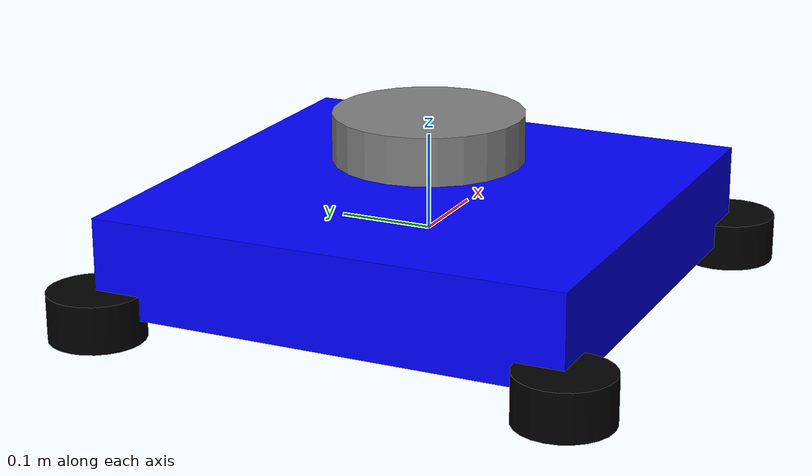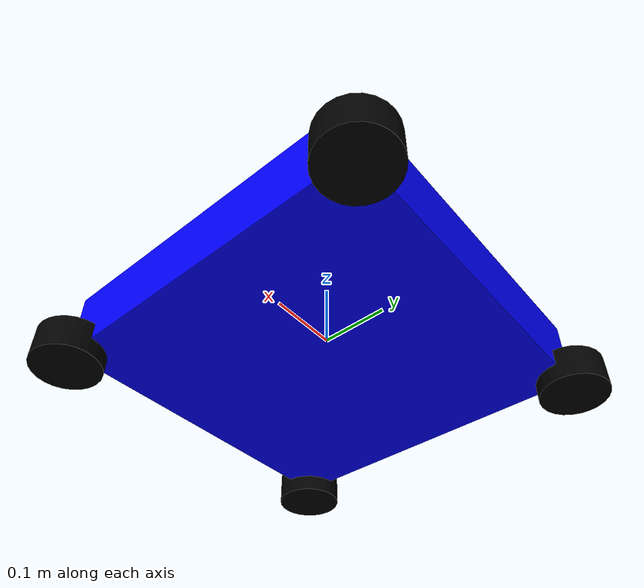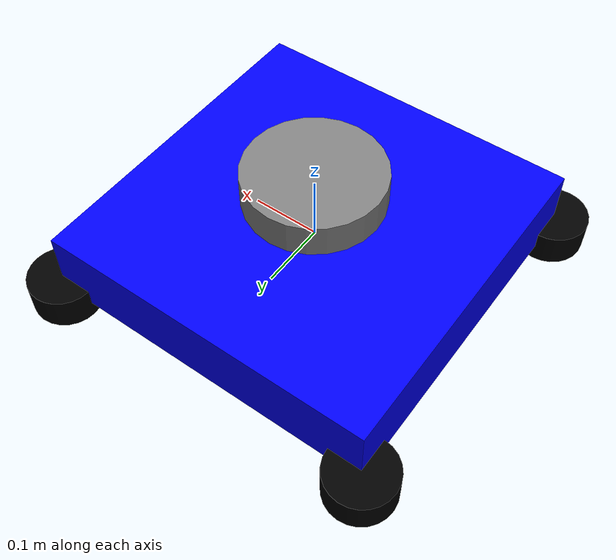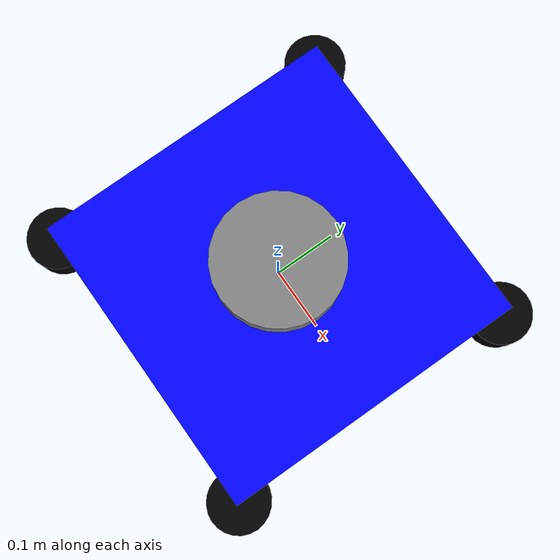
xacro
<?xml version="1.0"?>
<robot name="omni_robot" xmlns:xacro="http://www.ros.org/wiki/xacro">

  <!-- Base of the robot -->
  <link name="base_link">
    <visual>
      <geometry>
        <box size="0.5 0.5 0.1"/> <!-- Placeholder dimensions: 50cm x 50cm x 10cm -->
      </geometry>
      <material name="blue">
        <color rgba="0.0 0.0 1.0 1.0"/>
      </material>
    </visual>
    <collision>
      <geometry>
        <box size="0.5 0.5 0.1"/>
      </geometry>
    </collision>
    <inertial>
      <mass value="10.0"/>
      <inertia ixx="0.2" ixy="0.0" ixz="0.0" iyy="0.2" iyz="0.0" izz="0.2"/>
    </inertial>
  </link>

  <!-- LIDAR Sensor -->
  <link name="lidar_link">
    <visual>
      <geometry>
        <cylinder length="0.05" radius="0.1"/>
      </geometry>
      <material name="grey">
        <color rgba="0.5 0.5 0.5 1.0"/>
      </material>
    </visual>
    <collision>
      <geometry>
        <cylinder length="0.05" radius="0.1"/>
      </geometry>
    </collision>
    <inertial>
      <mass value="0.5"/>
      <inertia ixx="0.01" ixy="0.0" ixz="0.0" iyy="0.01" iyz="0.0" izz="0.01"/>
    </inertial>
  </link>

  <!-- LIDAR Joint -->
  <joint name="lidar_joint" type="fixed">
    <parent link="base_link"/>
    <child link="lidar_link"/>
    <origin xyz="0 0 0.1" rpy="0 0 0"/> <!-- Positioned on top of the base -->
  </joint>

  <!-- Wheels -->
  <xacro:macro name="wheel" params="name x y z rpy">
    <link name="${name}_link">
      <visual>
        <geometry>
          <cylinder length="0.05" radius="0.05"/> <!-- Placeholder dimensions: 10cm diameter, 5cm width -->
        </geometry>
        <material name="black">
          <color rgba="0.0 0.0 0.0 1.0"/>
        </material>
      </visual>
      <collision>
        <geometry>
          <cylinder length="0.05" radius="0.05"/>
        </geometry>
      </collision>
      <inertial>
        <mass value="1.0"/>
        <inertia ixx="0.005" ixy="0.0" ixz="0.0" iyy="0.005" iyz="0.0" izz="0.005"/>
      </inertial>
    </link>
    <joint name="${name}_joint" type="continuous">
      <parent link="base_link"/>
      <child link="${name}_link"/>
      <origin xyz="${x} ${y} ${z}" rpy="${rpy}"/>
      <axis xyz="0 1 0"/> <!-- Rotation around the Y-axis -->
    </joint>
  </xacro:macro>

  <xacro:wheel name="wheel_1" x="0.25" y="0.25" z="-0.05" rpy="0 0 0"/>
  <xacro:wheel name="wheel_2" x="0.25" y="-0.25" z="-0.05" rpy="0 0 0"/>
  <xacro:wheel name="wheel_3" x="-0.25" y="-0.25" z="-0.05" rpy="0 0 0"/>
  <xacro:wheel name="wheel_4" x="-0.25" y="0.25" z="-0.05" rpy="0 0 0"/>

</robot>
